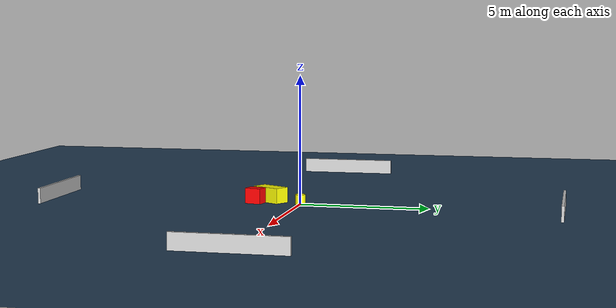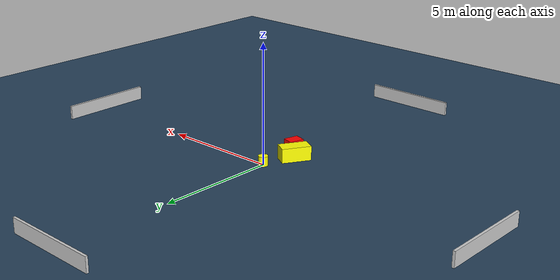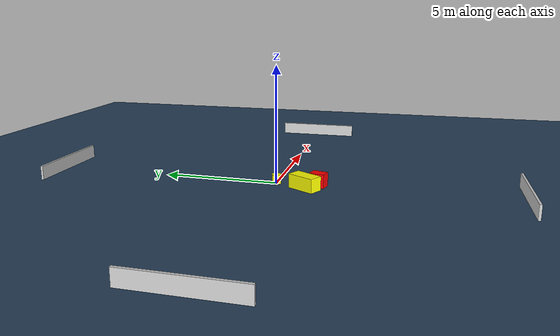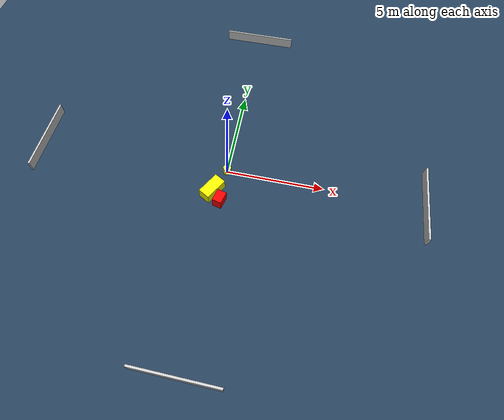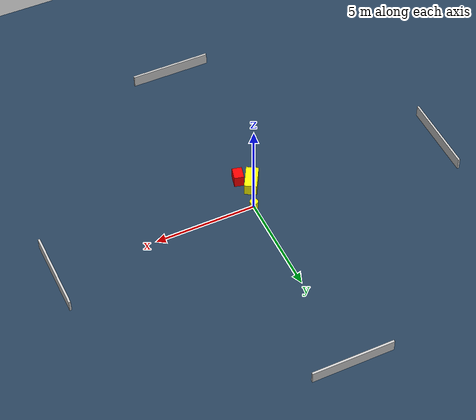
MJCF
<?xml version="1.0" ?>
<mujoco model="generated_environment">
  <option timestep="0.01" integrator="RK4" cone="elliptic"/>
  <default>
    <geom density="1"/>
  </default>
  <asset>
    <texture builtin="gradient" height="3072" name="skybox" rgb1="0.3 0.5 0.7" rgb2="0 0 0" type="skybox" width="512"/>
    <texture builtin="checker" height="300" name="groundplane" rgb1="0.2 0.3 0.4" rgb2="0.1 0.2 0.3" type="2d" width="300"/>
    <material name="groundplane" reflectance="0.2" texrepeat="5 5" texture="groundplane"/>
  </asset>
  <worldbody>
    <light dir="0 0 -1" directional="true" pos="0 0 1.5"/>
    <geom condim="3" friction="0.5 0.005 0.001" material="groundplane" name="floor" pos="0 0 0" size="0 0 0.05" type="plane"/>
    <body name="walls">
      <geom name="wall_1" condim="4" pos="-10.0 0.0 0.3" rgba="0.800000011920929 0.800000011920929 0.800000011920929 1.0" size="0.05 2.0 0.3" type="box"/>
      <geom name="wall_2" condim="4" pos="10.0 0.0 0.3" rgba="0.800000011920929 0.800000011920929 0.800000011920929 1.0" size="0.05 2.0 0.3" type="box"/>
      <geom name="wall_3" condim="4" pos="0.0 -10.0 0.3" rgba="0.800000011920929 0.800000011920929 0.800000011920929 1.0" size="2.0 0.05 0.3" type="box"/>
      <geom name="wall_4" condim="4" pos="0.0 10.0 0.3" rgba="0.800000011920929 0.800000011920929 0.800000011920929 1.0" size="2.0 0.05 0.3" type="box"/>
    </body>
    <body name="robot">
      <joint name="joint_x" type="slide" pos="0 0 0" axis="1 0 0"/>
      <joint name="joint_y" type="slide" pos="0 0 0" axis="0 1 0"/>
      <geom name="robot" type="cylinder" pos="0.0 0.0 0.2" size="0.2 0.2 0.0" mass="5.0" friction="1.0 0.005 0.0001" condim="4" rgba="1.0 1.0 0.0 1.0"/>
    </body>
    <body name="obstacle_1_movable">
      <geom name="obstacle_1_movable" condim="4" pos="-0.48618405559955336 -1.310788240565161 0.3" euler="0 0 150.23174839979012" friction="0.0 0.005 0.001" rgba="1.0 1.0 0.0 1.0" size="0.3052329997805662 0.6126770718625483 0.3" type="box" mass="0.1"/>
      <joint type="free"/>
    </body>
    <body name="obstacle_2_static">
      <geom name="obstacle_2_static" condim="4" pos="-0.006871146618438331 -1.8076767323841114 0.3" euler="0 0 76.12381775751469" friction="0.0 0.005 0.001" rgba="1.0 0.0 0.0 1.0" size="0.31949055358013856 0.23988927907946583 0.3" type="box"/>
    </body>
  </worldbody>
  <actuator>
    <motor name="actuator_x" joint="joint_x" gear="1" ctrlrange="-1 1"/>
    <motor name="actuator_y" joint="joint_y" gear="1" ctrlrange="-1 1"/>
  </actuator>
</mujoco>
